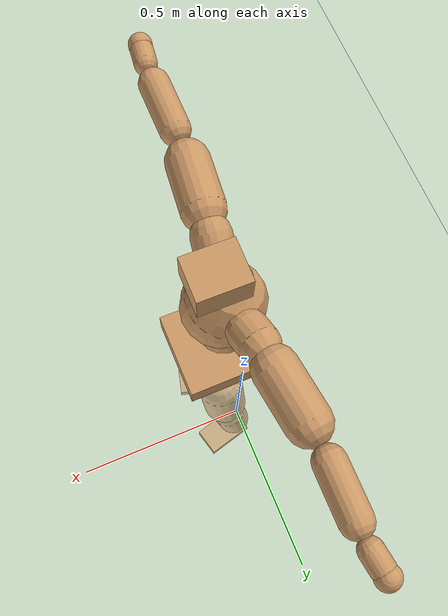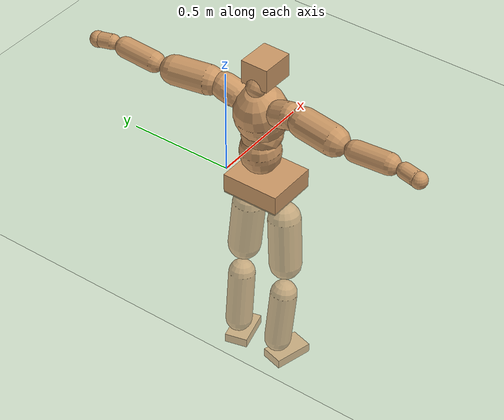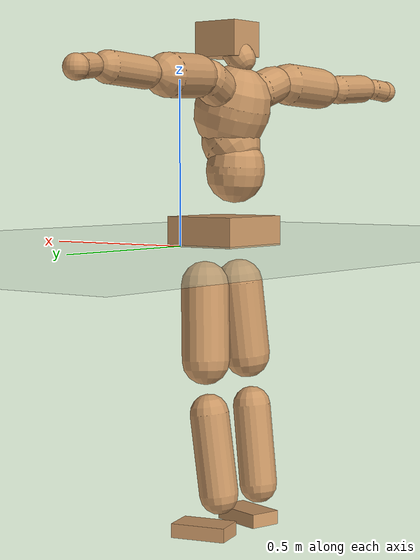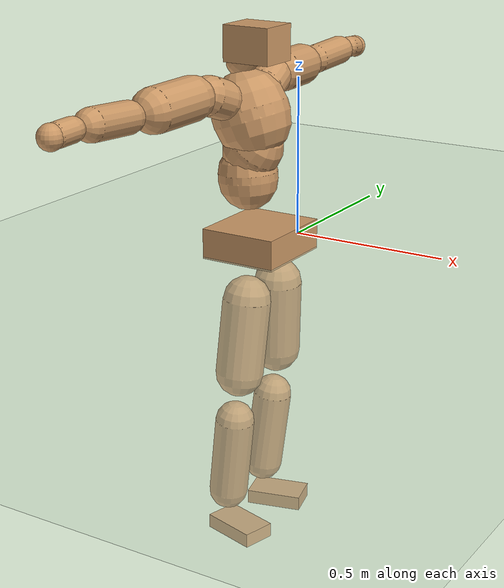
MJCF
<mujoco model="humanoid">
  <compiler coordinate="local" angle="radian"/>
  <default>
    <joint damping="0.0" armature="0.01" stiffness="0.0" limited="true"/>
    <geom conaffinity="1" condim="3" contype="7" margin="0.001" rgba="0.8 0.6 .4 1"/>
  </default>
  <asset>
    <texture type="skybox" builtin="gradient" rgb1=".4 .5 .6" rgb2="0 0 0" width="100" height="100"/>
    <texture builtin="flat" height="1278" mark="cross" markrgb="1 1 1" name="texgeom" random="0.01" rgb1="0.8 0.6 0.4" rgb2="0.8 0.6 0.4" type="cube" width="127"/>
    <texture builtin="checker" height="100" name="texplane" rgb1="0 0 0" rgb2="0.8 0.8 0.8" type="2d" width="100"/>
    <material name="MatPlane" reflectance="0.5" shininess="1" specular="1" texrepeat="60 60" texture="texplane"/>
    <material name="geom" texture="texgeom" texuniform="true"/>
  </asset>
  <worldbody>
    <light cutoff="100" diffuse="1 1 1" dir="-0 0 -1.3" directional="true" exponent="1" pos="0 0 1.3" specular=".1 .1 .1"/>
    <geom conaffinity="1" condim="3" name="floor" pos="0 0 0" rgba="0.8 0.9 0.8 1" size="100 100 .2" type="plane" material="MatPlane"/>
    <body name="Pelvis" pos="0.0002 -0.2171 0.0535">
      <freejoint name="Pelvis"/>
      <geom type="box" contype="1" conaffinity="1" density="500" pos="-0.0048 0.0000 -0.0142" size="0.1207 0.1347 0.047" quat="1.0000 0.0000 0.0000 -0.0007" name="Pelvis"/>
      <body name="L_Hip" pos="0.0056 0.0879 -0.101">
        <joint name="L_Hip_x" type="hinge" pos="0 0 0" axis="1 0 0" stiffness="800" damping="80" armature="0.02" range="-180.0000 180.0000"/>
        <joint name="L_Hip_y" type="hinge" pos="0 0 0" axis="0 1 0" stiffness="800" damping="80" armature="0.02" range="-180.0000 180.0000"/>
        <joint name="L_Hip_z" type="hinge" pos="0 0 0" axis="0 0 1" stiffness="800" damping="80" armature="0.02" range="-180.0000 180.0000"/>
        <geom type="capsule" contype="1" conaffinity="1" density="500" fromto="-0.0049 0.0052 -0.0783 -0.0198 0.0207 -0.3133" size="0.0746" name="L_Hip"/>
        <body name="L_Knee" pos="-0.0247 0.0258 -0.3916">
          <joint name="L_Knee_x" type="hinge" pos="0 0 0" axis="1 0 0" stiffness="800" damping="80" armature="0.02" range="-180.0000 180.0000"/>
          <joint name="L_Knee_y" type="hinge" pos="0 0 0" axis="0 1 0" stiffness="800" damping="80" armature="0.02" range="-180.0000 180.0000"/>
          <joint name="L_Knee_z" type="hinge" pos="0 0 0" axis="0 0 1" stiffness="800" damping="80" armature="0.02" range="-180.0000 180.0000"/>
          <geom type="capsule" contype="1" conaffinity="1" density="500" fromto="-0.0109 -0.0021 -0.0845 -0.0434 -0.0083 -0.3381" size="0.061" name="L_Knee"/>
          <body name="L_Ankle" pos="-0.0543 -0.0104 -0.4226">
            <joint name="L_Ankle_x" type="hinge" pos="0 0 0" axis="1 0 0" stiffness="800" damping="80" armature="0.02" range="-180.0000 180.0000"/>
            <joint name="L_Ankle_y" type="hinge" pos="0 0 0" axis="0 1 0" stiffness="800" damping="80" armature="0.02" range="-180.0000 180.0000"/>
            <joint name="L_Ankle_z" type="hinge" pos="0 0 0" axis="0 0 1" stiffness="800" damping="80" armature="0.02" range="-180.0000 180.0000"/>
            <geom type="box" contype="1" conaffinity="1" density="500" pos="0.0601 0.0152 -0.0303" size="0.0881 0.0531 0.0223" quat="0.9923 0.0000 0.0000 0.1236" name="L_Ankle"/>
            <body name="L_Toe" pos="0.1203 0.0304 -0.0606">
              <joint name="L_Toe_x" type="hinge" pos="0 0 0" axis="1 0 0" stiffness="500" damping="50" armature="0.02" range="-180.0000 180.0000"/>
              <joint name="L_Toe_y" type="hinge" pos="0 0 0" axis="0 1 0" stiffness="500" damping="50" armature="0.02" range="-180.0000 180.0000"/>
              <joint name="L_Toe_z" type="hinge" pos="0 0 0" axis="0 0 1" stiffness="500" damping="50" armature="0.02" range="-180.0000 180.0000"/>
              <geom type="box" contype="1" conaffinity="1" density="500" pos="0.0000 0.0000 0.0308" size="0.001 0.0026 0.0011" quat="0.9916 0.0000 0.0000 0.1293" name="L_Toe"/>
            </body>
          </body>
        </body>
      </body>
      <body name="R_Hip" pos="0.0084 -0.0854 -0.1026">
        <joint name="R_Hip_x" type="hinge" pos="0 0 0" axis="1 0 0" stiffness="800" damping="80" armature="0.02" range="-180.0000 180.0000"/>
        <joint name="R_Hip_y" type="hinge" pos="0 0 0" axis="0 1 0" stiffness="800" damping="80" armature="0.02" range="-180.0000 180.0000"/>
        <joint name="R_Hip_z" type="hinge" pos="0 0 0" axis="0 0 1" stiffness="800" damping="80" armature="0.02" range="-180.0000 180.0000"/>
        <geom type="capsule" contype="1" conaffinity="1" density="500" fromto="-0.0052 -0.0068 -0.0789 -0.0207 -0.0274 -0.3155" size="0.0737" name="R_Hip"/>
        <body name="R_Knee" pos="-0.0259 -0.0342 -0.3943">
          <joint name="R_Knee_x" type="hinge" pos="0 0 0" axis="1 0 0" stiffness="800" damping="80" armature="0.02" range="-180.0000 180.0000"/>
          <joint name="R_Knee_y" type="hinge" pos="0 0 0" axis="0 1 0" stiffness="800" damping="80" armature="0.02" range="-180.0000 180.0000"/>
          <joint name="R_Knee_z" type="hinge" pos="0 0 0" axis="0 0 1" stiffness="800" damping="80" armature="0.02" range="-180.0000 180.0000"/>
          <geom type="capsule" contype="1" conaffinity="1" density="500" fromto="-0.0106 0.0024 -0.0847 -0.0426 0.0096 -0.3390" size="0.0606" name="R_Knee"/>
          <body name="R_Ankle" pos="-0.0532 0.012 -0.4237">
            <joint name="R_Ankle_x" type="hinge" pos="0 0 0" axis="1 0 0" stiffness="800" damping="80" armature="0.02" range="-180.0000 180.0000"/>
            <joint name="R_Ankle_y" type="hinge" pos="0 0 0" axis="0 1 0" stiffness="800" damping="80" armature="0.02" range="-180.0000 180.0000"/>
            <joint name="R_Ankle_z" type="hinge" pos="0 0 0" axis="0 0 1" stiffness="800" damping="80" armature="0.02" range="-180.0000 180.0000"/>
            <geom type="box" contype="1" conaffinity="1" density="500" pos="0.0624 -0.0167 -0.0262" size="0.0889 0.0517 0.0222" quat="0.9914 0.0000 0.0000 -0.1307" name="R_Ankle"/>
            <body name="R_Toe" pos="0.1248 -0.0335 -0.0524">
              <joint name="R_Toe_x" type="hinge" pos="0 0 0" axis="1 0 0" stiffness="500" damping="50" armature="0.02" range="-180.0000 180.0000"/>
              <joint name="R_Toe_y" type="hinge" pos="0 0 0" axis="0 1 0" stiffness="500" damping="50" armature="0.02" range="-180.0000 180.0000"/>
              <joint name="R_Toe_z" type="hinge" pos="0 0 0" axis="0 0 1" stiffness="500" damping="50" armature="0.02" range="-180.0000 180.0000"/>
              <geom type="box" contype="1" conaffinity="1" density="500" pos="0.0000 0.0000 0.0283" size="0.001 0.0025 0.0012" quat="0.9926 0.0000 0.0000 -0.1214" name="R_Toe"/>
            </body>
          </body>
        </body>
      </body>
      <body name="Torso" pos="-0.0431 -0.0025 0.1182">
        <joint name="Torso_x" type="hinge" pos="0 0 0" axis="1 0 0" stiffness="1000" damping="100" armature="0.02" range="-180.0000 180.0000"/>
        <joint name="Torso_y" type="hinge" pos="0 0 0" axis="0 1 0" stiffness="1000" damping="100" armature="0.02" range="-180.0000 180.0000"/>
        <joint name="Torso_z" type="hinge" pos="0 0 0" axis="0 0 1" stiffness="1000" damping="100" armature="0.02" range="-180.0000 180.0000"/>
        <geom type="capsule" contype="1" conaffinity="1" density="500" fromto="-0.0053 0.0015 0.0713 -0.0036 0.0010 0.0475" size="0.0912" name="Torso"/>
        <body name="Spine" pos="-0.0089 0.0024 0.1188">
          <joint name="Spine_x" type="hinge" pos="0 0 0" axis="1 0 0" stiffness="1000" damping="100" armature="0.02" range="-180.0000 180.0000"/>
          <joint name="Spine_y" type="hinge" pos="0 0 0" axis="0 1 0" stiffness="1000" damping="100" armature="0.02" range="-180.0000 180.0000"/>
          <joint name="Spine_z" type="hinge" pos="0 0 0" axis="0 0 1" stiffness="1000" damping="100" armature="0.02" range="-180.0000 180.0000"/>
          <geom type="capsule" contype="1" conaffinity="1" density="500" fromto="0.0246 0.0015 0.0297 0.0164 0.0010 0.0198" size="0.0898" name="Spine"/>
          <body name="Chest" pos="0.041 0.0025 0.0496">
            <joint name="Chest_x" type="hinge" pos="0 0 0" axis="1 0 0" stiffness="1000" damping="100" armature="0.02" range="-180.0000 180.0000"/>
            <joint name="Chest_y" type="hinge" pos="0 0 0" axis="0 1 0" stiffness="1000" damping="100" armature="0.02" range="-180.0000 180.0000"/>
            <joint name="Chest_z" type="hinge" pos="0 0 0" axis="0 0 1" stiffness="1000" damping="100" armature="0.02" range="-180.0000 180.0000"/>
            <geom type="capsule" contype="1" conaffinity="1" density="500" fromto="-0.0331 0.0002 0.0978 -0.0221 0.0002 0.0652" size="0.1179" name="Chest"/>
            <body name="Neck" pos="-0.0703 0.001 0.2229">
              <joint name="Neck_x" type="hinge" pos="0 0 0" axis="1 0 0" stiffness="500" damping="50" armature="0.02" range="-180.0000 180.0000"/>
              <joint name="Neck_y" type="hinge" pos="0 0 0" axis="0 1 0" stiffness="500" damping="50" armature="0.02" range="-180.0000 180.0000"/>
              <joint name="Neck_z" type="hinge" pos="0 0 0" axis="0 0 1" stiffness="500" damping="50" armature="0.02" range="-180.0000 180.0000"/>
              <geom type="capsule" contype="1" conaffinity="1" density="500" fromto="0.0086 -0.0005 0.0094 0.0344 -0.0022 0.0376" size="0.0448" name="Neck"/>
              <body name="Head" pos="0.043 -0.0027 0.047">
                <joint name="Head_x" type="hinge" pos="0 0 0" axis="1 0 0" stiffness="500" damping="50" armature="0.02" range="-180.0000 180.0000"/>
                <joint name="Head_y" type="hinge" pos="0 0 0" axis="0 1 0" stiffness="500" damping="50" armature="0.02" range="-180.0000 180.0000"/>
                <joint name="Head_z" type="hinge" pos="0 0 0" axis="0 0 1" stiffness="500" damping="50" armature="0.02" range="-180.0000 180.0000"/>
                <geom type="box" contype="1" conaffinity="1" density="500" pos="0.0225 -0.0004 0.0245" size="0.0765 0.0636 0.0543" quat="1.0000 0.0000 0.0000 -0.0082" name="Head"/>
              </body>
            </body>
            <body name="L_Thorax" pos="-0.0451 0.0909 0.1338">
              <joint name="L_Thorax_x" type="hinge" pos="0 0 0" axis="1 0 0" stiffness="500" damping="50" armature="0.02" range="-180.0000 180.0000"/>
              <joint name="L_Thorax_y" type="hinge" pos="0 0 0" axis="0 1 0" stiffness="500" damping="50" armature="0.02" range="-180.0000 180.0000"/>
              <joint name="L_Thorax_z" type="hinge" pos="0 0 0" axis="0 0 1" stiffness="500" damping="50" armature="0.02" range="-180.0000 180.0000"/>
              <geom type="capsule" contype="1" conaffinity="1" density="500" fromto="-0.0030 0.0187 0.0073 -0.0119 0.0746 0.0291" size="0.0602" name="L_Thorax"/>
              <body name="L_Shoulder" pos="-0.0149 0.0933 0.0363">
                <joint name="L_Shoulder_x" type="hinge" pos="0 0 0" axis="1 0 0" stiffness="500" damping="50" armature="0.02" range="-720.0000 720.0000"/>
                <joint name="L_Shoulder_y" type="hinge" pos="0 0 0" axis="0 1 0" stiffness="500" damping="50" armature="0.02" range="-720.0000 720.0000"/>
                <joint name="L_Shoulder_z" type="hinge" pos="0 0 0" axis="0 0 1" stiffness="500" damping="50" armature="0.02" range="-720.0000 720.0000"/>
                <geom type="capsule" contype="1" conaffinity="1" density="500" fromto="-0.0074 0.0538 -0.0020 -0.0295 0.2152 -0.0081" size="0.0654" name="L_Shoulder"/>
                <body name="L_Elbow" pos="-0.0369 0.2691 -0.0101">
                  <joint name="L_Elbow_x" type="hinge" pos="0 0 0" axis="1 0 0" stiffness="500" damping="50" armature="0.02" range="-720.0000 720.0000"/>
                  <joint name="L_Elbow_y" type="hinge" pos="0 0 0" axis="0 1 0" stiffness="500" damping="50" armature="0.02" range="-720.0000 720.0000"/>
                  <joint name="L_Elbow_z" type="hinge" pos="0 0 0" axis="0 0 1" stiffness="500" damping="50" armature="0.02" range="-720.0000 720.0000"/>
                  <geom type="capsule" contype="1" conaffinity="1" density="500" fromto="0.0007 0.0517 0.0025 0.0029 0.2068 0.0101" size="0.0467" name="L_Elbow"/>
                  <body name="L_Wrist" pos="0.0036 0.2585 0.0126">
                    <joint name="L_Wrist_x" type="hinge" pos="0 0 0" axis="1 0 0" stiffness="300" damping="30" armature="0.02" range="-180.0000 180.0000"/>
                    <joint name="L_Wrist_y" type="hinge" pos="0 0 0" axis="0 1 0" stiffness="300" damping="30" armature="0.02" range="-180.0000 180.0000"/>
                    <joint name="L_Wrist_z" type="hinge" pos="0 0 0" axis="0 0 1" stiffness="300" damping="30" armature="0.02" range="-180.0000 180.0000"/>
                    <geom type="capsule" contype="1" conaffinity="1" density="500" fromto="-0.0030 0.0180 -0.0021 -0.0118 0.0719 -0.0085" size="0.0344" name="L_Wrist"/>
                    <body name="L_Hand" pos="-0.0148 0.0899 -0.0106">
                      <joint name="L_Hand_x" type="hinge" pos="0 0 0" axis="1 0 0" stiffness="300" damping="30" armature="0.02" range="-180.0000 180.0000"/>
                      <joint name="L_Hand_y" type="hinge" pos="0 0 0" axis="0 1 0" stiffness="300" damping="30" armature="0.02" range="-180.0000 180.0000"/>
                      <joint name="L_Hand_z" type="hinge" pos="0 0 0" axis="0 0 1" stiffness="300" damping="30" armature="0.02" range="-180.0000 180.0000"/>
                      <geom type="sphere" contype="1" conaffinity="1" density="500" size="0.0364" pos="0.0000 0.0000 0.0000" name="L_Hand"/>
                    </body>
                  </body>
                </body>
              </body>
            </body>
            <body name="R_Thorax" pos="-0.0502 -0.0908 0.1322">
              <joint name="R_Thorax_x" type="hinge" pos="0 0 0" axis="1 0 0" stiffness="500" damping="50" armature="0.02" range="-180.0000 180.0000"/>
              <joint name="R_Thorax_y" type="hinge" pos="0 0 0" axis="0 1 0" stiffness="500" damping="50" armature="0.02" range="-180.0000 180.0000"/>
              <joint name="R_Thorax_z" type="hinge" pos="0 0 0" axis="0 0 1" stiffness="500" damping="50" armature="0.02" range="-180.0000 180.0000"/>
              <geom type="capsule" contype="1" conaffinity="1" density="500" fromto="-0.0028 -0.0196 0.0071 -0.0111 -0.0784 0.0285" size="0.0596" name="R_Thorax"/>
              <body name="R_Shoulder" pos="-0.0139 -0.098 0.0356">
                <joint name="R_Shoulder_x" type="hinge" pos="0 0 0" axis="1 0 0" stiffness="500" damping="50" armature="0.02" range="-720.0000 720.0000"/>
                <joint name="R_Shoulder_y" type="hinge" pos="0 0 0" axis="0 1 0" stiffness="500" damping="50" armature="0.02" range="-720.0000 720.0000"/>
                <joint name="R_Shoulder_z" type="hinge" pos="0 0 0" axis="0 0 1" stiffness="500" damping="50" armature="0.02" range="-720.0000 720.0000"/>
                <geom type="capsule" contype="1" conaffinity="1" density="500" fromto="-0.0057 -0.0531 -0.0025 -0.0227 -0.2123 -0.0101" size="0.0665" name="R_Shoulder"/>
                <body name="R_Elbow" pos="-0.0284 -0.2654 -0.0127">
                  <joint name="R_Elbow_x" type="hinge" pos="0 0 0" axis="1 0 0" stiffness="500" damping="50" armature="0.02" range="-720.0000 720.0000"/>
                  <joint name="R_Elbow_y" type="hinge" pos="0 0 0" axis="0 1 0" stiffness="500" damping="50" armature="0.02" range="-720.0000 720.0000"/>
                  <joint name="R_Elbow_z" type="hinge" pos="0 0 0" axis="0 0 1" stiffness="500" damping="50" armature="0.02" range="-720.0000 720.0000"/>
                  <geom type="capsule" contype="1" conaffinity="1" density="500" fromto="0.0006 -0.0530 0.0034 0.0023 -0.2120 0.0136" size="0.047" name="R_Elbow"/>
                  <body name="R_Wrist" pos="0.0029 -0.265 0.017">
                    <joint name="R_Wrist_x" type="hinge" pos="0 0 0" axis="1 0 0" stiffness="300" damping="30" armature="0.02" range="-180.0000 180.0000"/>
                    <joint name="R_Wrist_y" type="hinge" pos="0 0 0" axis="0 1 0" stiffness="300" damping="30" armature="0.02" range="-180.0000 180.0000"/>
                    <joint name="R_Wrist_z" type="hinge" pos="0 0 0" axis="0 0 1" stiffness="300" damping="30" armature="0.02" range="-180.0000 180.0000"/>
                    <geom type="capsule" contype="1" conaffinity="1" density="500" fromto="-0.0024 -0.0180 -0.0016 -0.0097 -0.0720 -0.0063" size="0.035" name="R_Wrist"/>
                    <body name="R_Hand" pos="-0.0121 -0.09 -0.0079">
                      <joint name="R_Hand_x" type="hinge" pos="0 0 0" axis="1 0 0" stiffness="300" damping="30" armature="0.02" range="-180.0000 180.0000"/>
                      <joint name="R_Hand_y" type="hinge" pos="0 0 0" axis="0 1 0" stiffness="300" damping="30" armature="0.02" range="-180.0000 180.0000"/>
                      <joint name="R_Hand_z" type="hinge" pos="0 0 0" axis="0 0 1" stiffness="300" damping="30" armature="0.02" range="-180.0000 180.0000"/>
                      <geom type="sphere" contype="1" conaffinity="1" density="500" size="0.0364" pos="0.0000 0.0000 0.0000" name="R_Hand"/>
                    </body>
                  </body>
                </body>
              </body>
            </body>
          </body>
        </body>
      </body>
    </body>
  </worldbody>
  <actuator>
    <motor name="L_Hip_x" joint="L_Hip_x" gear="500"/>
    <motor name="L_Hip_y" joint="L_Hip_y" gear="500"/>
    <motor name="L_Hip_z" joint="L_Hip_z" gear="500"/>
    <motor name="L_Knee_x" joint="L_Knee_x" gear="500"/>
    <motor name="L_Knee_y" joint="L_Knee_y" gear="500"/>
    <motor name="L_Knee_z" joint="L_Knee_z" gear="500"/>
    <motor name="L_Ankle_x" joint="L_Ankle_x" gear="500"/>
    <motor name="L_Ankle_y" joint="L_Ankle_y" gear="500"/>
    <motor name="L_Ankle_z" joint="L_Ankle_z" gear="500"/>
    <motor name="L_Toe_x" joint="L_Toe_x" gear="500"/>
    <motor name="L_Toe_y" joint="L_Toe_y" gear="500"/>
    <motor name="L_Toe_z" joint="L_Toe_z" gear="500"/>
    <motor name="R_Hip_x" joint="R_Hip_x" gear="500"/>
    <motor name="R_Hip_y" joint="R_Hip_y" gear="500"/>
    <motor name="R_Hip_z" joint="R_Hip_z" gear="500"/>
    <motor name="R_Knee_x" joint="R_Knee_x" gear="500"/>
    <motor name="R_Knee_y" joint="R_Knee_y" gear="500"/>
    <motor name="R_Knee_z" joint="R_Knee_z" gear="500"/>
    <motor name="R_Ankle_x" joint="R_Ankle_x" gear="500"/>
    <motor name="R_Ankle_y" joint="R_Ankle_y" gear="500"/>
    <motor name="R_Ankle_z" joint="R_Ankle_z" gear="500"/>
    <motor name="R_Toe_x" joint="R_Toe_x" gear="500"/>
    <motor name="R_Toe_y" joint="R_Toe_y" gear="500"/>
    <motor name="R_Toe_z" joint="R_Toe_z" gear="500"/>
    <motor name="Torso_x" joint="Torso_x" gear="500"/>
    <motor name="Torso_y" joint="Torso_y" gear="500"/>
    <motor name="Torso_z" joint="Torso_z" gear="500"/>
    <motor name="Spine_x" joint="Spine_x" gear="500"/>
    <motor name="Spine_y" joint="Spine_y" gear="500"/>
    <motor name="Spine_z" joint="Spine_z" gear="500"/>
    <motor name="Chest_x" joint="Chest_x" gear="500"/>
    <motor name="Chest_y" joint="Chest_y" gear="500"/>
    <motor name="Chest_z" joint="Chest_z" gear="500"/>
    <motor name="Neck_x" joint="Neck_x" gear="500"/>
    <motor name="Neck_y" joint="Neck_y" gear="500"/>
    <motor name="Neck_z" joint="Neck_z" gear="500"/>
    <motor name="Head_x" joint="Head_x" gear="500"/>
    <motor name="Head_y" joint="Head_y" gear="500"/>
    <motor name="Head_z" joint="Head_z" gear="500"/>
    <motor name="L_Thorax_x" joint="L_Thorax_x" gear="500"/>
    <motor name="L_Thorax_y" joint="L_Thorax_y" gear="500"/>
    <motor name="L_Thorax_z" joint="L_Thorax_z" gear="500"/>
    <motor name="L_Shoulder_x" joint="L_Shoulder_x" gear="500"/>
    <motor name="L_Shoulder_y" joint="L_Shoulder_y" gear="500"/>
    <motor name="L_Shoulder_z" joint="L_Shoulder_z" gear="500"/>
    <motor name="L_Elbow_x" joint="L_Elbow_x" gear="500"/>
    <motor name="L_Elbow_y" joint="L_Elbow_y" gear="500"/>
    <motor name="L_Elbow_z" joint="L_Elbow_z" gear="500"/>
    <motor name="L_Wrist_x" joint="L_Wrist_x" gear="500"/>
    <motor name="L_Wrist_y" joint="L_Wrist_y" gear="500"/>
    <motor name="L_Wrist_z" joint="L_Wrist_z" gear="500"/>
    <motor name="L_Hand_x" joint="L_Hand_x" gear="500"/>
    <motor name="L_Hand_y" joint="L_Hand_y" gear="500"/>
    <motor name="L_Hand_z" joint="L_Hand_z" gear="500"/>
    <motor name="R_Thorax_x" joint="R_Thorax_x" gear="500"/>
    <motor name="R_Thorax_y" joint="R_Thorax_y" gear="500"/>
    <motor name="R_Thorax_z" joint="R_Thorax_z" gear="500"/>
    <motor name="R_Shoulder_x" joint="R_Shoulder_x" gear="500"/>
    <motor name="R_Shoulder_y" joint="R_Shoulder_y" gear="500"/>
    <motor name="R_Shoulder_z" joint="R_Shoulder_z" gear="500"/>
    <motor name="R_Elbow_x" joint="R_Elbow_x" gear="500"/>
    <motor name="R_Elbow_y" joint="R_Elbow_y" gear="500"/>
    <motor name="R_Elbow_z" joint="R_Elbow_z" gear="500"/>
    <motor name="R_Wrist_x" joint="R_Wrist_x" gear="500"/>
    <motor name="R_Wrist_y" joint="R_Wrist_y" gear="500"/>
    <motor name="R_Wrist_z" joint="R_Wrist_z" gear="500"/>
    <motor name="R_Hand_x" joint="R_Hand_x" gear="500"/>
    <motor name="R_Hand_y" joint="R_Hand_y" gear="500"/>
    <motor name="R_Hand_z" joint="R_Hand_z" gear="500"/>
  </actuator>
  <contact>
    <exclude body1="Torso" body2="Chest"/>
    <exclude body1="Head" body2="Chest"/>
    <exclude body1="R_Knee" body2="R_Toe"/>
    <exclude body1="R_Knee" body2="L_Ankle"/>
    <exclude body1="R_Knee" body2="L_Toe"/>
    <exclude body1="L_Knee" body2="L_Toe"/>
    <exclude body1="L_Knee" body2="R_Ankle"/>
    <exclude body1="L_Knee" body2="R_Toe"/>
    <exclude body1="L_Shoulder" body2="Chest"/>
    <exclude body1="R_Shoulder" body2="Chest"/>
  </contact>
  <sensor/>
  <size njmax="700" nconmax="700"/>
</mujoco>
